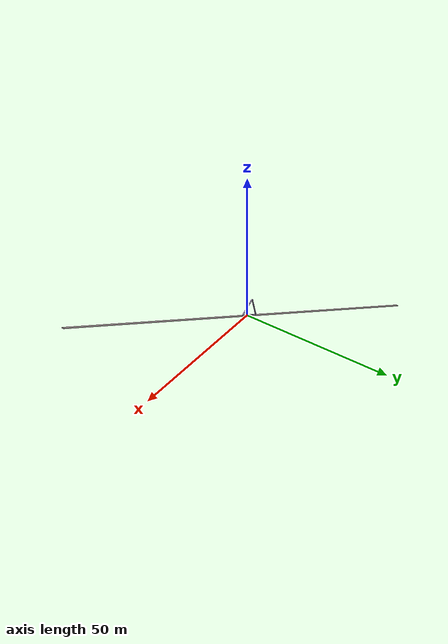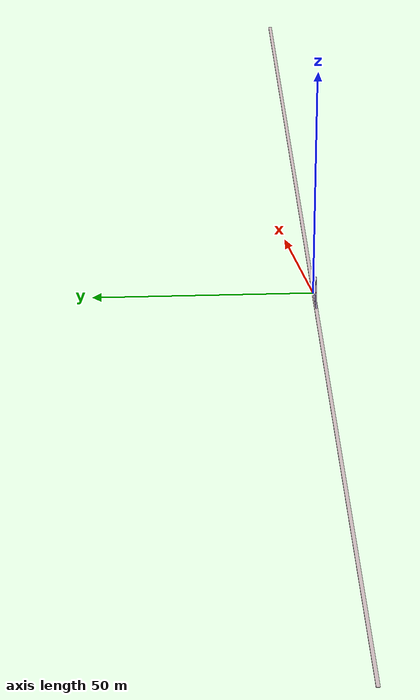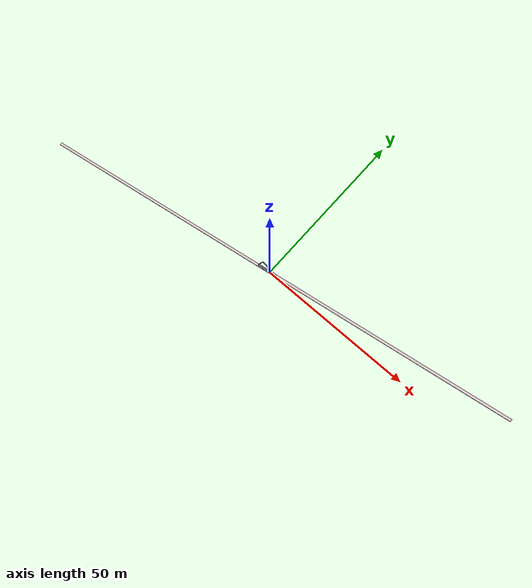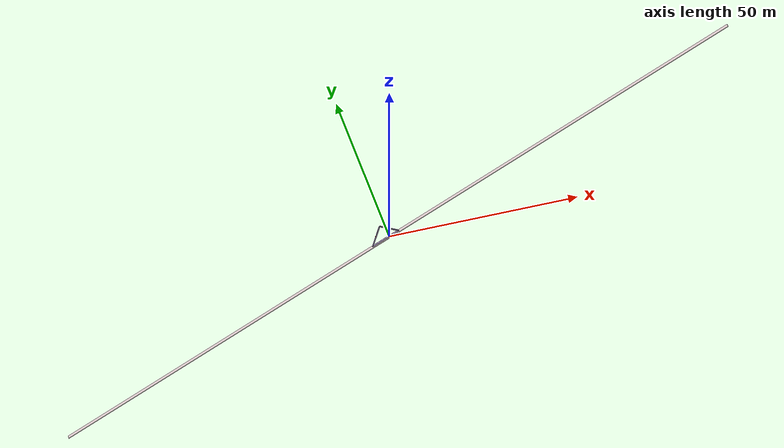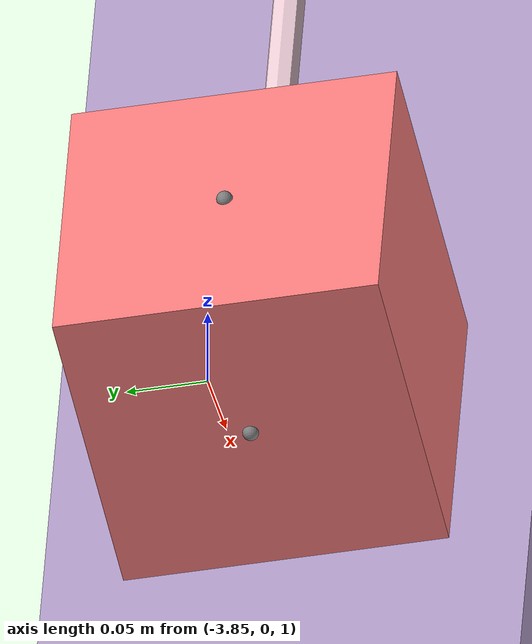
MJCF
<mujoco>
            <compiler angle="radian" autolimits="true" />
            <compiler meshdir="asset" texturedir="asset" assetdir="asset" />
            <option gravity="0 0 -9.81" />
            <default class="main">
            <geom friction="0 0 0" solimp="0.9 1 0.001 0.01 20" solref="0.02 1" condim="1" />
        </default>

        <visual>
            <headlight diffuse="0.7 0.7 0.7" ambient="0.5 0.5 0.5" />
            <global offwidth="1920" offheight="1080" />
        </visual>

        <asset>
            <texture type="skybox" builtin="gradient" rgb1="0 0.5 0.7" rgb2="0 0 0" width="512" height="512" />
            <texture type="2d" name="checks1" builtin="checker" rgb1="1 1 1" rgb2="0 0 0" width="256" height="256" />
            <material name="test_color" texture="checks1" texuniform="true" texrepeat="2 2" />
            <material name="reflectance" reflectance=".4" />
            <texture name="grid" type="2d" builtin="checker" width="512" height="512" rgb1="1.0 0.6235 0.1098" rgb2="1.0 0.749 0.4118" />
            <texture name="white-texture-background" type="2d" file="/home/aryansatpathy/DevStuff/cmu/PHO/sim/geom_sources/fixed_sources/rocket/rocket.white-texture-background.png" content_type="image/png" />
            <material name="pulley" texture="grid" texrepeat="2 2" texuniform="true" />

        </asset>
        <worldbody><body name="massprismpulleyplane_0.plane" pos="0.0 0.0 0.0" quat="0.9659258262890683 0.0 -0.25881904510252074 0.0"><geom name="massprismpulleyplane_0.plane.geom" type="box" pos="0 0 0" size="100 0.4 0.1" material="reflectance" rgba="0.82745098 0.75686275 0.76470588 1" mass="1.0" quat="0 0 0 1" condim="1" contype="1" conaffinity="1" />
<site name="massprismpulleyplane_0.plane.sensor" pos="0 0 0" quat="0.9659258262890683 -0.0 0.25881904510252074 -0.0" />
<site name="massprismpulleyplane_0.plane.left" pos="-100.05 0 0.2" quat="0.9659258262890683 -0.0 0.25881904510252074 -0.0" />
<site name="massprismpulleyplane_0.plane.right" pos="100.05 0 0.2" quat="0.9659258262890683 -0.0 0.25881904510252074 -0.0" />
</body>
<body name="massprismpulleyplane_0.prism" pos="-2.5999999999999996 0.0 4.503332099679081" quat="0.9659258262890683 0.0 -0.25881904510252074 0.0"><geom name="massprismpulleyplane_0.prism.geom_bottom" type="box" pos="-1.0566243270259357 0.0 -5.0" size="3.9433756729740654 0.15 0.1" rgba="0.70588235 0.62352941 0.8 1" mass="1.1033333333333333" quat="1 0 0 0" condim="1" contype="1" conaffinity="1" />
<geom name="massprismpulleyplane_0.prism.geom_left" type="box" pos="-2.5000000000000004 0.0 -2.5" size="3.535533905932738 0.15 0.1" rgba="0.70588235 0.62352941 0.8 1" mass="1.1033333333333333" quat="0.9238795325112867 0.0 -0.3826834323650898 0.0" condim="1" contype="1" conaffinity="1" />
<geom name="massprismpulleyplane_0.prism.geom_right" type="box" pos="1.4433756729740648 0.0 -2.5" size="2.886751345948129 0.15 0.1" rgba="0.70588235 0.62352941 0.8 1" mass="1.1033333333333333" quat="0.8660254037844387 0.0 0.49999999999999994 0.0" condim="1" contype="1" conaffinity="1" />
<site name="massprismpulleyplane_0.prism.sensor" pos="0 0 -2.5" quat="0.9659258262890683 -0.0 0.25881904510252074 -0.0" />
<site name="massprismpulleyplane_0.prism.left" pos="-5.000000000000001 0 -5" quat="0.9659258262890683 -0.0 0.25881904510252074 -0.0" />
<site name="massprismpulleyplane_0.prism.right" pos="2.8867513459481295 0 -5" quat="0.9659258262890683 -0.0 0.25881904510252074 -0.0" />
<site name="massprismpulleyplane_0.prism.top" pos="0 0 0" quat="0.9659258262890683 -0.0 0.25881904510252074 -0.0" />
<site name="massprismpulleyplane_0.prism.left_top_site" pos="-0.14142135623730967 0.0 0.1414213562373096" quat="0.9659258262890683 -0.0 0.25881904510252074 -0.0" />
<site name="massprismpulleyplane_0.prism.right_top_site" pos="0.17320508075688779 0.0 0.09999999999999992" quat="0.9659258262890683 -0.0 0.25881904510252074 -0.0" />
<joint name="massprismpulleyplane_0.prism.joint" type="free" axis="1 1 1" pos="0 0 0" />
</body>
<body name="massprismpulleyplane_0.mass_left" pos="-3.708248674718911 0.0 1.1400323992384886" quat="0.7933533402912352 0.0 -0.6087614290087207 0.0">
<geom name="massprismpulleyplane_0.mass_left.geom" type="box" pos="0 0 0" size="0.1 0.1 0.1" rgba="1.0 0.5 0.5 1.0" mass="2.97" quat="0 0 0 1" condim="1" contype="1" conaffinity="1" />
<site name="massprismpulleyplane_0.mass_left.top-1" pos="0.0 0 0.1" quat="0.7933533402912352 -0.0 0.6087614290087207 -0.0" />
<site name="massprismpulleyplane_0.mass_left.sensor" pos="0 0 0" quat="0.7933533402912352 -0.0 0.6087614290087207 -0.0" />
<site name="massprismpulleyplane_0.mass_left.center" pos="0 0 0" quat="0.7933533402912352 -0.0 0.6087614290087207 -0.0" />
<site name="massprismpulleyplane_0.mass_left.left" pos="-0.1 0 0" quat="0.7933533402912352 -0.0 0.6087614290087207 -0.0" />
<site name="massprismpulleyplane_0.mass_left.right" pos="0.1 0 0" quat="0.7933533402912352 -0.0 0.6087614290087207 -0.0" />
<site name="massprismpulleyplane_0.mass_left.bottom" pos="0 0 -0.1" quat="0.7933533402912352 -0.0 0.6087614290087207 -0.0" />
<joint name="massprismpulleyplane_0.mass_left.joint" type="free" axis="1 1 1" pos="0 0 0" />
</body>
<body name="massprismpulleyplane_0.mass_right" pos="8.881784197001252e-16 0.0 3.2331615074619044" quat="0.9659258262890683 0.0 0.25881904510252074 0.0">
<geom name="massprismpulleyplane_0.mass_right.geom" type="box" pos="0 0 0" size="0.1 0.1 0.1" rgba="0.5 0.5 1.0 1.0" mass="2.08" quat="0 0 0 1" condim="1" contype="1" conaffinity="1" />
<site name="massprismpulleyplane_0.mass_right.top-1" pos="0.0 0 0.1" quat="0.9659258262890683 -0.0 -0.25881904510252074 -0.0" />
<site name="massprismpulleyplane_0.mass_right.sensor" pos="0 0 0" quat="0.9659258262890683 -0.0 -0.25881904510252074 -0.0" />
<site name="massprismpulleyplane_0.mass_right.center" pos="0 0 0" quat="0.9659258262890683 -0.0 -0.25881904510252074 -0.0" />
<site name="massprismpulleyplane_0.mass_right.left" pos="-0.1 0 0" quat="0.9659258262890683 -0.0 -0.25881904510252074 -0.0" />
<site name="massprismpulleyplane_0.mass_right.right" pos="0.1 0 0" quat="0.9659258262890683 -0.0 -0.25881904510252074 -0.0" />
<site name="massprismpulleyplane_0.mass_right.bottom" pos="0 0 -0.1" quat="0.9659258262890683 -0.0 -0.25881904510252074 -0.0" />
<joint name="massprismpulleyplane_0.mass_right.joint" type="free" axis="1 1 1" pos="0 0 0" />
</body>

        </worldbody><tendon>
<spatial name="massprismpulleyplane_0.massprismpulleyplane_0.ready_tendon-0" width="0.01" rgba="0.9686 0.8392 0.8784 1" range="0 6.739626587997361" limited="true" solimplimit="0.99 1 0.001 0.01 20" solreflimit="0.02 1">
<site site="massprismpulleyplane_0.mass_left.center" />
<site site="massprismpulleyplane_0.prism.left_top_site" />
<site site="massprismpulleyplane_0.prism.right_top_site" />
<site site="massprismpulleyplane_0.mass_right.center" />
</spatial>
</tendon>

        <sensor>

        </sensor>
        <custom>

        </custom>
        <contact>

        </contact>
        <actuator>

        </actuator>
    </mujoco>
